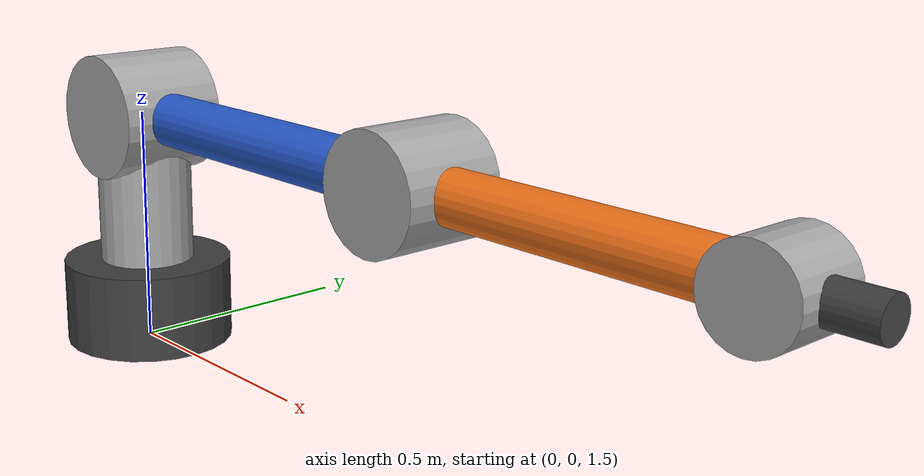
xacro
<?xml version="1.0"?>
<robot name="two_link_ur5_like_arm" xmlns:xacro="http://www.ros.org/wiki/xacro">

  <xacro:arg name="robot_namespace" default="/arm1"/>
  <xacro:arg name="prefix" default=""/>

  <xacro:property name="prefix" value="$(arg prefix)"/>

  <!-- ============================================================
       Materials
       ============================================================ -->

  <material name="ur_gray">
    <color rgba="0.65 0.65 0.65 1.0"/>
  </material>

  <material name="ur_dark">
    <color rgba="0.25 0.25 0.25 1.0"/>
  </material>

  <material name="ur_blue">
    <color rgba="0.15 0.35 0.80 1.0"/>
  </material>

  <material name="ur_orange">
    <color rgba="0.95 0.45 0.10 1.0"/>
  </material>

  <!-- ============================================================
       Root link
       ============================================================ -->

  <!--
    This link is the internal root link of each robot model.
    It is not the global Gazebo world, but we give it large inertia
    and set it as kinematic in Gazebo to help keep the base fixed.
  -->
  <link name="${prefix}world">
    <inertial>
      <origin xyz="0 0 0" rpy="0 0 0"/>
      <mass value="1000.0"/>
      <inertia ixx="100.0" ixy="0.0" ixz="0.0"
               iyy="100.0" iyz="0.0"
               izz="100.0"/>
    </inertial>
  </link>

  <!-- Initial height: z = 1.5 -->
  <joint name="${prefix}world_to_base" type="fixed">
    <parent link="${prefix}world"/>
    <child link="${prefix}base_link"/>
    <origin xyz="0 0 1.5" rpy="0 0 0"/>
  </joint>

  <!-- ============================================================
       Base link
       ============================================================ -->

  <link name="${prefix}base_link">

    <visual>
      <origin xyz="0 0 0.09" rpy="0 0 0"/>
      <geometry>
        <cylinder radius="0.18" length="0.18"/>
      </geometry>
      <material name="ur_dark"/>
    </visual>

    <collision>
      <origin xyz="0 0 0.09" rpy="0 0 0"/>
      <geometry>
        <cylinder radius="0.18" length="0.18"/>
      </geometry>
    </collision>

    <inertial>
      <origin xyz="0 0 0.09" rpy="0 0 0"/>
      <mass value="5.0"/>
      <inertia ixx="0.05" ixy="0.0" ixz="0.0"
               iyy="0.05" iyz="0.0"
               izz="0.05"/>
    </inertial>

  </link>

  <!-- ============================================================
       Shoulder support
       ============================================================ -->

  <joint name="${prefix}base_to_shoulder_support" type="fixed">
    <parent link="${prefix}base_link"/>
    <child link="${prefix}shoulder_support"/>
    <origin xyz="0 0 0.18" rpy="0 0 0"/>
  </joint>

  <link name="${prefix}shoulder_support">

    <visual>
      <origin xyz="0 0 0.16" rpy="0 0 0"/>
      <geometry>
        <cylinder radius="0.10" length="0.32"/>
      </geometry>
      <material name="ur_gray"/>
    </visual>

    <collision>
      <origin xyz="0 0 0.16" rpy="0 0 0"/>
      <geometry>
        <cylinder radius="0.10" length="0.32"/>
      </geometry>
    </collision>

    <inertial>
      <origin xyz="0 0 0.16" rpy="0 0 0"/>
      <mass value="2.0"/>
      <inertia ixx="0.02" ixy="0.0" ixz="0.0"
               iyy="0.02" iyz="0.0"
               izz="0.01"/>
    </inertial>

  </link>

  <joint name="joint1" type="revolute">
    <parent link="${prefix}shoulder_support"/>
    <child link="${prefix}upper_arm"/>
    <origin xyz="0 0 0.32" rpy="0 0 0"/>
    <axis xyz="0 1 0"/>
    <limit lower="-3.14159" upper="3.14159" effort="80.0" velocity="12.0"/>
    <dynamics damping="0.02" friction="0.0"/>
  </joint>

  <!-- ============================================================
       Upper arm
       ============================================================ -->

  <link name="${prefix}upper_arm">

    <!-- Shoulder joint housing -->
    <visual>
      <origin xyz="0 0 0" rpy="1.5708 0 0"/>
      <geometry>
        <cylinder radius="0.13" length="0.22"/>
      </geometry>
      <material name="ur_gray"/>
    </visual>

    <collision>
      <origin xyz="0 0 0" rpy="1.5708 0 0"/>
      <geometry>
        <cylinder radius="0.13" length="0.22"/>
      </geometry>
    </collision>

    <!-- Upper arm along x axis -->
    <visual>
      <origin xyz="0.425 0 0" rpy="0 1.5708 0"/>
      <geometry>
        <cylinder radius="0.055" length="0.85"/>
      </geometry>
      <material name="ur_blue"/>
    </visual>

    <collision>
      <origin xyz="0.425 0 0" rpy="0 1.5708 0"/>
      <geometry>
        <cylinder radius="0.055" length="0.85"/>
      </geometry>
    </collision>

    <inertial>
      <origin xyz="0.425 0 0" rpy="0 0 0"/>
      <mass value="2.0"/>
      <inertia ixx="0.01" ixy="0.0" ixz="0.0"
               iyy="0.13" iyz="0.0"
               izz="0.13"/>
    </inertial>

  </link>

  <joint name="joint2" type="revolute">
    <parent link="${prefix}upper_arm"/>
    <child link="${prefix}forearm"/>
    <origin xyz="0.85 0 0" rpy="0 0 0"/>
    <axis xyz="0 1 0"/>
    <limit lower="-3.14159" upper="3.14159" effort="50.0" velocity="12.0"/>
    <dynamics damping="0.02" friction="0.0"/>
  </joint>

  <!-- ============================================================
       Forearm
       ============================================================ -->

  <link name="${prefix}forearm">

    <!-- Elbow joint housing -->
    <visual>
      <origin xyz="0 0 0" rpy="1.5708 0 0"/>
      <geometry>
        <cylinder radius="0.11" length="0.20"/>
      </geometry>
      <material name="ur_gray"/>
    </visual>

    <collision>
      <origin xyz="0 0 0" rpy="1.5708 0 0"/>
      <geometry>
        <cylinder radius="0.11" length="0.20"/>
      </geometry>
    </collision>

    <!-- Forearm along x axis -->
    <visual>
      <origin xyz="0.35 0 0" rpy="0 1.5708 0"/>
      <geometry>
        <cylinder radius="0.05" length="0.70"/>
      </geometry>
      <material name="ur_orange"/>
    </visual>

    <collision>
      <origin xyz="0.35 0 0" rpy="0 1.5708 0"/>
      <geometry>
        <cylinder radius="0.05" length="0.70"/>
      </geometry>
    </collision>

    <!-- Wrist-like end cylinder -->
    <visual>
      <origin xyz="0.70 0 0" rpy="1.5708 0 0"/>
      <geometry>
        <cylinder radius="0.08" length="0.14"/>
      </geometry>
      <material name="ur_gray"/>
    </visual>

    <collision>
      <origin xyz="0.70 0 0" rpy="1.5708 0 0"/>
      <geometry>
        <cylinder radius="0.08" length="0.14"/>
      </geometry>
    </collision>

    <inertial>
      <origin xyz="0.35 0 0" rpy="0 0 0"/>
      <mass value="1.2"/>
      <inertia ixx="0.006" ixy="0.0" ixz="0.0"
               iyy="0.05" iyz="0.0"
               izz="0.05"/>
    </inertial>

  </link>

  <!-- ============================================================
       End-effector
       ============================================================ -->

  <joint name="${prefix}forearm_to_ee" type="fixed">
    <parent link="${prefix}forearm"/>
    <child link="${prefix}ee_link"/>
    <origin xyz="0.70 0 0" rpy="0 0 0"/>
  </joint>

  <link name="${prefix}ee_link">

    <visual>
      <origin xyz="0.08 0 0" rpy="0 1.5708 0"/>
      <geometry>
        <cylinder radius="0.035" length="0.16"/>
      </geometry>
      <material name="ur_dark"/>
    </visual>

    <collision>
      <origin xyz="0.08 0 0" rpy="0 1.5708 0"/>
      <geometry>
        <cylinder radius="0.035" length="0.16"/>
      </geometry>
    </collision>

    <inertial>
      <origin xyz="0.08 0 0" rpy="0 0 0"/>
      <mass value="0.2"/>
      <inertia ixx="0.0005" ixy="0.0" ixz="0.0"
               iyy="0.0005" iyz="0.0"
               izz="0.0005"/>
    </inertial>

  </link>

  <transmission name="${prefix}joint1_transmission">
    <type>transmission_interface/SimpleTransmission</type>

    <joint name="joint1">
      <hardwareInterface>hardware_interface/EffortJointInterface</hardwareInterface>
    </joint>

    <actuator name="${prefix}joint1_motor">
      <hardwareInterface>hardware_interface/EffortJointInterface</hardwareInterface>
      <mechanicalReduction>1.0</mechanicalReduction>
    </actuator>
  </transmission>

  <transmission name="${prefix}joint2_transmission">
    <type>transmission_interface/SimpleTransmission</type>

    <joint name="joint2">
      <hardwareInterface>hardware_interface/EffortJointInterface</hardwareInterface>
    </joint>

    <actuator name="${prefix}joint2_motor">
      <hardwareInterface>hardware_interface/EffortJointInterface</hardwareInterface>
      <mechanicalReduction>1.0</mechanicalReduction>
    </actuator>
  </transmission>

  <!-- ============================================================
       Gazebo colors, gravity settings, and fixed-base settings
       ============================================================ -->

  <!-- Internal root link. Keep it fixed/kinematic in Gazebo. -->
  <gazebo reference="${prefix}world">
    <gravity>false</gravity>
    <kinematic>true</kinematic>
  </gazebo>

  <!-- Fixed base. -->
  <gazebo reference="${prefix}base_link">
    <material>Gazebo/DarkGrey</material>
    <gravity>false</gravity>
    <kinematic>true</kinematic>
  </gazebo>

  <!-- Fixed shoulder support. -->
  <gazebo reference="${prefix}shoulder_support">
    <material>Gazebo/Grey</material>
    <gravity>false</gravity>
    <kinematic>true</kinematic>
  </gazebo>

  <!-- Moving links should not be kinematic. -->
  <gazebo reference="${prefix}upper_arm">
    <material>Gazebo/Blue</material>
    <gravity>false</gravity>
  </gazebo>

  <gazebo reference="${prefix}forearm">
    <material>Gazebo/Orange</material>
    <gravity>false</gravity>
  </gazebo>

  <gazebo reference="${prefix}ee_link">
    <material>Gazebo/DarkGrey</material>
    <gravity>false</gravity>
  </gazebo>

  <!-- ============================================================
       Gazebo ros_control plugin
       ============================================================ -->

  <gazebo>
    <plugin name="${prefix}gazebo_ros_control" filename="libgazebo_ros_control.so">
      <robotNamespace>$(arg robot_namespace)</robotNamespace>
      <robotParam>robot_description</robotParam>
      <robotSimType>gazebo_ros_control/DefaultRobotHWSim</robotSimType>
    </plugin>
  </gazebo>

</robot>
